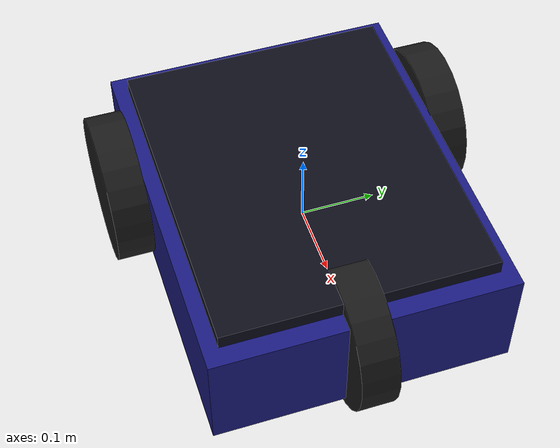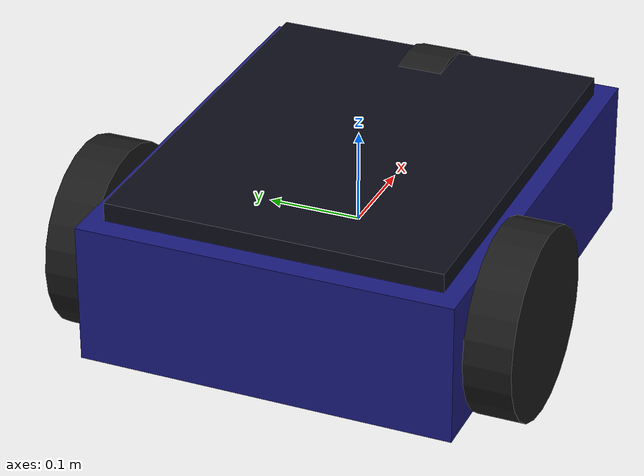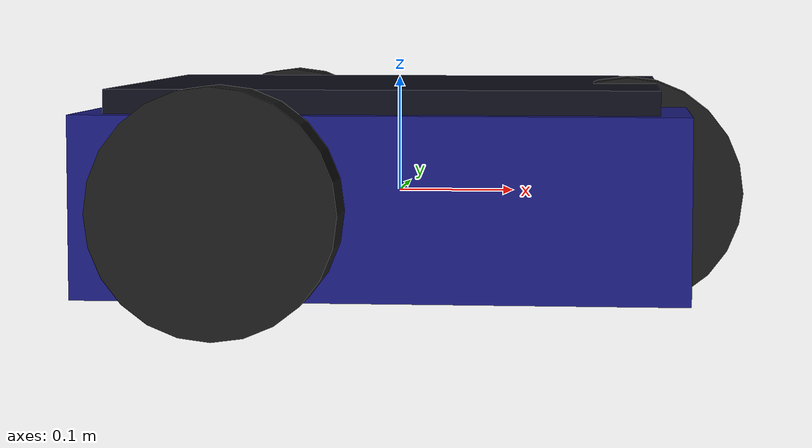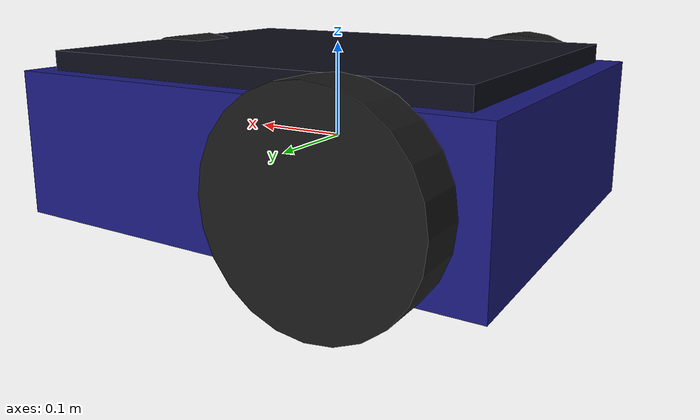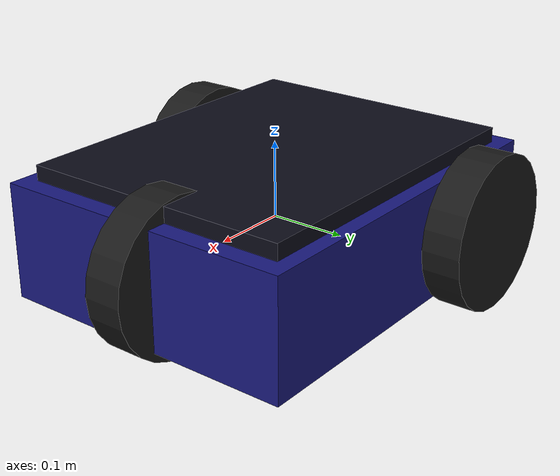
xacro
<?xml version="1.0"?>
<robot xmlns:xacro="http://www.ros.org/wiki/xacro" name="autonomous_bot_v2">

    <xacro:property name="PI" value="3.14159"/>

    <xacro:property name="base_width" value="0.4"/>
    <xacro:property name="base_length" value="0.5"/>
    <xacro:property name="base_height" value="0.15"/>

    <xacro:property name="wheel_radius" value="0.1"/>
    <xacro:property name="wheel_length" value="0.05"/>
    <xacro:property name="wheel_separation" value="0.45"/>
    <xacro:property name="caster_radius" value="0.1"/>
    <xacro:property name="caster_length" value="0.05"/>

    <material name="dark_blue">
        <color rgba="0.1 0.1 0.5 1"/>
    </material>
    <material name="solar_black">
        <color rgba="0.05 0.05 0.1 1"/>
    </material>
    <material name="black">
        <color rgba="0.1 0.1 0.1 1"/>
    </material>
    <material name="red">
        <color rgba="1 0 0 1"/>
    </material>

    <link name="base_link">
        <visual>
            <geometry><box size="${base_length} ${base_width} ${base_height}"/></geometry>
            <material name="dark_blue"/>
        </visual>

        <collision>
            <geometry><box size="${base_length} ${base_width} ${base_height}"/></geometry>
        </collision>
        <inertial>
            <mass value="5.0"/>
            <inertia ixx="0.1" ixy="0.0" ixz="0.0" iyy="0.1" iyz="0.0" izz="0.1"/>
        </inertial>
    </link>

    <xacro:macro name="wheel" params="prefix reflect">
        <link name="${prefix}_wheel_link">
            <visual>

                <origin rpy="${PI/2} 0 0"/>
                <geometry><cylinder radius="${wheel_radius}" length="${wheel_length}"/></geometry>
                <material name="black"/>
            </visual>
            <collision>
                <origin rpy="${PI/2} 0 0"/>

                <geometry><cylinder radius="${wheel_radius}" length="${wheel_length}"/></geometry>
            </collision>
            <inertial>
                <mass value="0.5"/>
                <inertia ixx="0.002" ixy="0" ixz="0" iyy="0.002" iyz="0" izz="0.004"/>
            </inertial>
        </link>
        <joint name="${prefix}_wheel_joint" type="continuous">
            <parent link="base_link"/>
            <child link="${prefix}_wheel_link"/>
            <origin xyz="-${base_length/4} ${reflect * wheel_separation/2} 0" rpy="0 0 0"/>
            <axis xyz="0 1 0"/>
        </joint>
    </xacro:macro>

    <xacro:wheel prefix="left" reflect="1"/>
    <xacro:wheel prefix="right" reflect="-1"/>

<link name="caster_fork_link">
    <visual>
        <geometry>
            <box size="0.08 0.08 0.08"/>
        </geometry>
        <material name="black"/>
    </visual>
    <collision>
        <geometry>
            <box size="0.08 0.08 0.08"/>
        </geometry>
    </collision>
    <inertial>
        <mass value="0.2"/>
        <inertia ixx="0.001" ixy="0" ixz="0" iyy="0.001" iyz="0" izz="0.001"/>
    </inertial>
</link>

<joint name="caster_fork_joint" type="revolute">
    <parent link="base_link"/>
    <child link="caster_fork_link"/>
    <origin xyz="${base_length/2 * 0.8} 0 0" />
    <axis xyz="0 0 1"/>
    <limit lower="-${PI/2}" upper="${PI/2}" effort="10" velocity="10"/>
</joint>

<link name="caster_wheel_link">
    <visual>
        <origin rpy="${PI/2} 0 0"/>
        <geometry><cylinder radius="${caster_radius}" length="${caster_length}"/></geometry>
        <material name="black"/>
    </visual>
    <collision>
        <origin rpy="${PI/2} 0 0"/>
        <geometry><cylinder radius="${caster_radius}" length="${caster_length}"/></geometry>
    </collision>
    <inertial>
        <mass value="0.5"/>
        <inertia ixx="0.002" ixy="0" ixz="0" iyy="0.002" iyz="0" izz="0.004"/>
    </inertial>
</link>

<joint name="caster_wheel_joint" type="continuous">
    <parent link="caster_fork_link"/>
    <child link="caster_wheel_link"/>
    <origin xyz="0 0 0" rpy="0 0 0"/>
    <axis xyz="0 1 0"/>
</joint>

    <link name="solar_panel_link">

      <visual>
            <geometry><box size="${base_length * 0.9} ${base_width * 0.9} 0.02"/></geometry>
            <material name="solar_black"/>
        </visual>
        <collision>
            <geometry><box size="${base_length * 0.9} ${base_width * 0.9} 0.02"/></geometry>
        </collision>
        <inertial>

            <mass value="0.5"/>
            <inertia ixx="0.01" ixy="0" ixz="0" iyy="0.01" iyz="0" izz="0.01"/>
        </inertial>
    </link>

    <joint name="solar_panel_joint" type="fixed">
        <parent link="base_link"/>
        <child link="solar_panel_link"/>
        <origin xyz="0 0 ${base_height/2 + 0.01}"/>
    </joint>

    <link name="imu_link"/>
    <joint name="imu_joint" type="fixed">
        <parent link="base_link"/>

        <child link="imu_link"/>
        <origin xyz="0 0 0"/>
    </joint>

    <link name="gps_link"/>
    <joint name="gps_joint" type="fixed">
        <parent link="base_link"/>
        <child link="gps_link"/>
        <origin xyz="${base_length/3} 0 ${base_height/2 + 0.02}"/>
    </joint>

    <link name="laser_link">
        <visual>
            <geometry><box size="0.03 0.03 0.03"/></geometry>

            <material name="red"/>
        </visual>
    </link>
    <joint name="laser_joint" type="fixed">
        <parent link="base_link"/>
        <child link="laser_link"/>
        <origin xyz="${base_length/2} 0 0"/>
    </joint>

    <gazebo>
        <plugin name="diff_drive" filename="libgazebo_ros_diff_drive.so">
            <ros>
                <namespace>/</namespace>

                <remapping>cmd_vel:=cmd_vel</remapping>
                <remapping>odom:=odom</remapping>
            </ros>
            <left_joint>left_wheel_joint</left_joint>
            <right_joint>right_wheel_joint</right_joint>
            <wheel_separation>${wheel_separation}</wheel_separation>
            <wheel_diameter>${2 * wheel_radius}</wheel_diameter>

            <publish_odom>true</publish_odom>
            <publish_odom_tf>true</publish_odom_tf>
            <odometry_frame>odom</odometry_frame>
            <robot_base_frame>base_link</robot_base_frame>
        </plugin>

        <plugin name="imu_plugin" filename="libgazebo_ros_imu_sensor.so">
            <ros>
                <namespace>/</namespace>

                <remapping>~/out:=imu</remapping>
            </ros>
            <initial_orientation_as_reference>false</initial_orientation_as_reference>
        </plugin>

        <plugin name="gps_plugin" filename="libgazebo_ros_gps_sensor.so">
            <ros>
                <namespace>/</namespace>
                <remapping>~/out:=gps/fix</remapping>

            </ros>
        </plugin>

        <plugin name="laser_plugin" filename="libgazebo_ros_ray_sensor.so">
            <ros>
                <namespace>/</namespace>
                <remapping>~/out:=scan</remapping>
            </ros>
            <output_type>sensor_msgs/LaserScan</output_type>
            <frame_name>laser_link</frame_name>

            <sensor type="ray">
                <pose>0 0 0 0 0 0</pose>
                <visualize>true</visualize>
                <update_rate>10</update_rate>
                <ray>

                    <scan>
                        <horizontal>
                            <samples>360</samples>
                            <resolution>1</resolution>

                            <min_angle>-${PI}</min_angle>
                            <max_angle>${PI}</max_angle>
                        </horizontal>
                    </scan>

                    <range>
                        <min>0.1</min>
                        <max>12.0</max>
                        <resolution>0.01</resolution>
                    </range>

                </ray>
            </sensor>
        </plugin>

        <gazebo reference="caster_wheel_link">
            <mu1>0.1</mu1>
            <mu2>0.1</mu2>
            <material>Gazebo/Black</material>
        </gazebo>
    </gazebo>
</robot>
